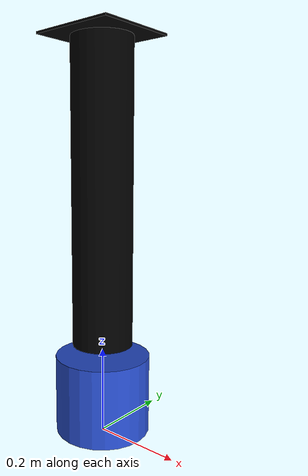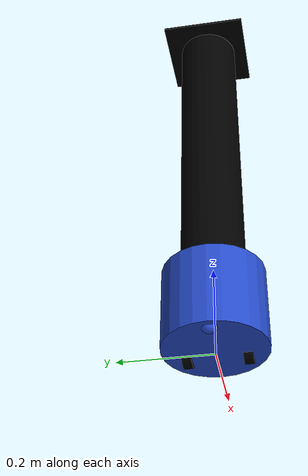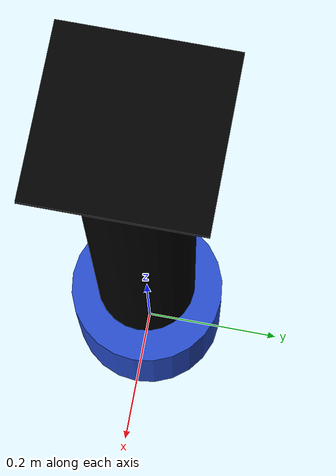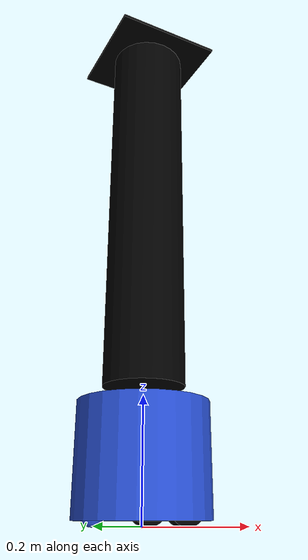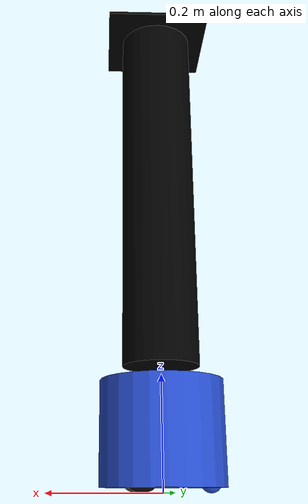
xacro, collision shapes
<?xml version="1.0"?>
<robot xmlns:xacro="http://www.ros.org/wiki/xacro" name="fra2mo" >
  <xacro:include filename="$(find ros2_fra2mo)/urdf/fra2mo_base_macro.xacro"/>
  <xacro:include filename="$(find ros2_fra2mo)/urdf/lidar_gazebo_macro.xacro"/>
  <xacro:property name="LIDAR" value="True"/>

  <xacro:fra2mo_base/>

  <xacro:if value="${LIDAR}">
    <xacro:lidar_gazebo_sensor parent="lidar_link"/>
  </xacro:if>

  <joint name="base_to_support_joint" type="fixed">
    <parent link="base_link"/>
    <child link="support_link"/>
    <origin xyz="0 0 0.2" rpy="0 0 0"/>
  </joint>

  <link name="support_link">
    <visual>
      <origin xyz="0 0 0.30" rpy="0 0 0"/>
      <geometry>
        <cylinder radius="0.03" length="0.69"/>
      </geometry>
      <material name="Black">
        <color rgba="0 0 0 1"/>
      </material>
    </visual>

    <collision>
      <origin xyz="0 0 0.30" rpy="0 0 0"/>
      <geometry>
        <cylinder radius="0.07" length="0.69"/>
      </geometry>
    </collision>

    <inertial>
      <mass value="0.1"/>
      <origin xyz="0 0 0.45" rpy="0 0 0"/>
      <inertia ixx="0.01" ixy="0" ixz="0" iyy="0.01" iyz="0" izz="0.01"/>
    </inertial>
  </link>

  <joint name="support_to_aruco_joint" type="fixed">
    <parent link="support_link"/>
    <child link="aruco_tag_link"/>
    <origin xyz="0 0 0.65" rpy="0 0 0"/>
  </joint>

  <link name="aruco_tag_link">
    <visual>
      <geometry>
        <box size="0.25 0.25 0.005"/>
      </geometry>
      <material name="Black">
        <color rgba="0 0 0 1"/>
      </material>
    </visual>

    <collision>
      <geometry>
        <box size="0.2 0.2 0.005"/>
      </geometry>
      <surface>
         <friction>
            <ode>
              <mu>1000.0</mu>
              <mu2>1000.0</mu2>
            </ode>
         </friction>
      </surface>
    </collision>

    <inertial>
      <mass value="0.01"/>
      <inertia ixx="0.0001" ixy="0" ixz="0" iyy="0.0001" iyz="0" izz="0.0001"/>
    </inertial>
  </link>

</robot>

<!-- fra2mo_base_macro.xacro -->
<robot xmlns:xacro="http://www.ros.org/wiki/xacro">
  <xacro:include filename="$(find ros2_fra2mo)/urdf/utility_macro.xacro" />

  <xacro:macro name="fra2mo_base" > <xacro:property name="base_height" value="0.180" />
    <xacro:property name="base_radius" value="0.11" />
    <xacro:property name="base_mass" value="5" />
    <xacro:property name="wheel_mass" value="2.5" />
    <xacro:property name="wheel_radius" value="0.035" />
    <xacro:property name="wheel_axle" value="0.13" />

    <link name="base_footprint">
    </link>

    <link name="base_link">
      <inertial>
        <origin xyz="0 0 0" />
        <mass value="${base_mass}" />
        <xacro:cylinder_inertia m="${base_mass}" r="${base_radius}" h="${base_height}" />
      </inertial>
      <visual>
        <geometry>
          <mesh filename="file://$(find ros2_fra2mo)/meshes/rl_fra2mo_body.stl" scale="0.001 0.001 0.001" />
        </geometry>
        <material name="Blue" />
        <origin xyz="0 0 0" rpy="0 0 0" />
      </visual>
      <collision>
        <geometry>
          <cylinder length="${base_height}" radius="${base_radius}" />
        </geometry>
        <origin xyz="0 0.0 ${(base_height/2.0)-0.05}" rpy="0 0 0" />
      </collision>
      <collision>
        <geometry>
          <sphere radius="0.019" />
        </geometry>
        <origin xyz="-0.0825 0.0 -0.04" rpy="0 0 0" />
      </collision>
    </link>

    <link name="left_wheel_link">
      <visual>
        <geometry>
          <mesh filename="file://$(find ros2_fra2mo)/meshes/rl_fra2mo_wheel.stl" scale="0.001 0.001 0.001" />
        </geometry>
        <material name="Black" />
        <origin xyz="0 0 0" rpy="0 0 0" />
      </visual>

      <collision>
        <geometry>
          <cylinder length="0.02" radius="${wheel_radius}" />
        </geometry>
        <origin xyz="0 0 0" rpy="${M_PI/2} 0 0" />
      </collision>

      <inertial>
        <origin xyz="0 0 0" />
        <mass value="${wheel_mass}" />
        <inertia ixx="0.001" ixy="0.0" ixz="0.0" iyy="0.001" iyz="0.0" izz="0.001" />
      </inertial>
    </link>

    <link name="right_wheel_link">
      <visual>
        <geometry>
          <mesh filename="file://$(find ros2_fra2mo)/meshes/rl_fra2mo_wheel.stl" scale="0.001 0.001 0.001" />
        </geometry>
        <material name="Black"/>
        <origin xyz="0 0 0" rpy="0 0 0" />
      </visual>

      <collision>
        <geometry>
           <cylinder length="0.02" radius="${wheel_radius}" />
        </geometry>
        <origin xyz="0 0 0" rpy="${M_PI/2} 0 0" />
      </collision>

      <inertial>
        <origin xyz="0 0 0" />
        <mass value="${wheel_mass}" />
        <inertia ixx="0.001" ixy="0.0" ixz="0.0" iyy="0.001" iyz="0.0" izz="0.001" />
      </inertial>
    </link>

    <link name="d435_link">
    </link>
    <link name="lidar_link" />

    <joint name="base_footprint_joint" type="fixed">
      <parent link="base_footprint" />
      <child link="base_link" />
      <origin xyz="0.0 0.0 0.059" rpy="0 0 0" />
    </joint>
    <joint name="left_wheel_joint" type="continuous">
      <parent link="base_link" />
      <child link="left_wheel_link" />
      <origin xyz="0.04025 0.062 -0.024" rpy="0 0 0" />
      <axis xyz="0 1 0" />
      <limit effort="100" velocity="100" />
      <dynamics damping="0.5" friction="0.01" />
    </joint>
    <joint name="right_wheel_joint" type="continuous">
      <parent link="base_link" />
      <child link="right_wheel_link" />
      <origin xyz="0.04025 -0.062 -0.024" rpy="0 0 ${-M_PI}" />
      <axis xyz="0 -1 0" />
      <limit effort="100" velocity="100" />
      <dynamics damping="0.5" friction="0.01" />
    </joint>
    <joint name="d435_joint" type="fixed">
      <parent link="base_link" />
      <child link="d435_link" />
      <origin xyz="0.090925 0.0 0.06670" rpy="0 0 0" />
    </joint>
    <joint name="lidar_joint" type="fixed">
      <parent link="base_link" />
      <child link="lidar_link" />
      <origin xyz="0.0 0.0 0.125" rpy="0 0 0" />
    </joint>

    <transmission name="left_wheel_joint_trans">
      <type>transmission_interface/SimpleTransmission</type>
      <joint name="left_wheel_joint" />
      <actuator name="left_wheel_joint_motor">
        <mechanicalReduction>1</mechanicalReduction>
        <hardwareInterface>EffortJointInterface</hardwareInterface>
      </actuator>
    </transmission>
    <transmission name="right_wheel_joint_trans">
      <type>transmission_interface/SimpleTransmission</type>
      <joint name="right_wheel_joint" />
      <actuator name="right_wheel_joint_motor">
        <mechanicalReduction>1</mechanicalReduction>
        <hardwareInterface>EffortJointInterface</hardwareInterface>
      </actuator>
    </transmission>

    <gazebo>
      <plugin name="ignition::gazebo::systems::DiffDrive" filename="libignition-gazebo-diff-drive-system.so">
        <left_joint>left_wheel_joint</left_joint>
        <right_joint>right_wheel_joint</right_joint>
        <wheel_separation>${wheel_axle}</wheel_separation>
        <wheel_radius>${wheel_radius}</wheel_radius>
        <odom_publish_frequency>50</odom_publish_frequency>
        <topic>cmd_vel</topic>
      </plugin>
    </gazebo>

  </xacro:macro>
</robot>

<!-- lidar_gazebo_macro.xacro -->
<robot xmlns:xacro="http://www.ros.org/wiki/xacro" name="lidar_gazebo_macro" >

  <xacro:macro name="lidar_gazebo_sensor" params="parent">

    <link name="laser_frame">
      <inertial>
        <origin xyz="0 0 0" />
        <mass value="0.1" />
        <xacro:cylinder_inertia m="0.1" r="0.037" h="0.04" />
      </inertial>
      <visual>
        <origin rpy="0 0 ${-M_PI_2}" xyz="0.0 0.0 -0.031" />
        <geometry>
          <mesh filename="file://$(find ros2_fra2mo)/meshes/lidar.stl" scale="0.001 0.001 0.001" />
        </geometry>
        <material name="White" />
      </visual>
      <collision>
        <origin xyz="0.0 0.0 -0.031" rpy="0 0 0" />
        <geometry>
          <cylinder length="0.04" radius="0.037" />
        </geometry>
      </collision>
    </link>

    <joint name="laser_joint" type="fixed">
      <parent link="${parent}" />
      <child link="laser_frame" />
      <origin rpy="0 0 0" xyz="0.0 0.0 0.031" />
    </joint>

    <gazebo reference="laser_frame">
      <sensor name="laser_frame" type="gpu_lidar">
          <!--TO LOOK-->
          <topic>lidar</topic>
          <update_rate>5.10</update_rate>
          <ray>
              <scan>
                  <horizontal>
                      <samples>640</samples>
                      <resolution>1</resolution>
                      <min_angle>-3.14</min_angle>
                      <max_angle>3.14</max_angle>
                  </horizontal>
              </scan>
              <range>
                  <min>0.1</min>
                  <max>10.0</max>
                  <resolution>0.01</resolution>
              </range>
            </ray>
            <always_on>false</always_on>
            <visualize>false</visualize>
            <frame_id>laser_frame</frame_id> <!--TO LOOK-->
            <ignition_frame_id>laser_frame</ignition_frame_id>
        </sensor>
    </gazebo>

  <!--TO LOOK-->

  </xacro:macro>
</robot>
